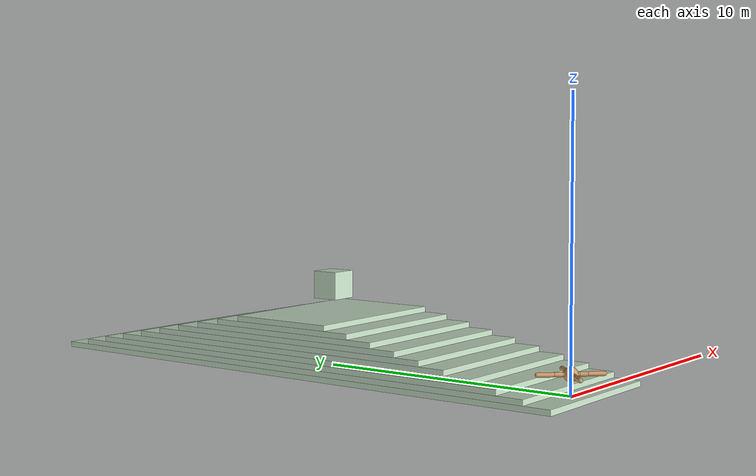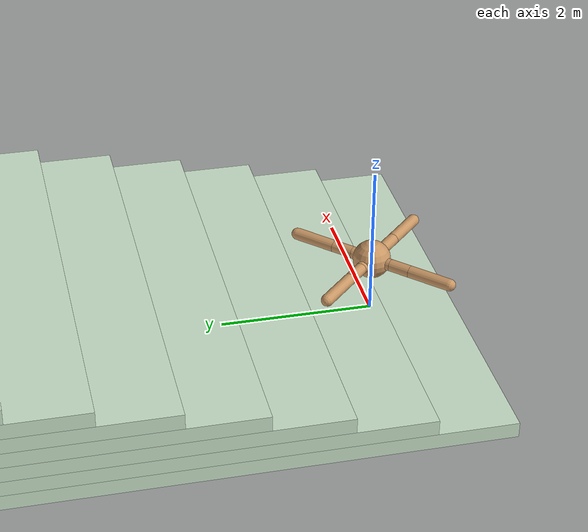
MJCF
<!-- NOT USING CURRENTLY -->

<mujoco model="ant stair scene">

  <include file="ant_stairs.xml"/>

  <statistic center="0 0 0.1" extent="0.8"/>

  <visual>
    <headlight diffuse="0.6 0.6 0.6" ambient="0.3 0.3 0.3" specular="0 0 0"/>
    <rgba haze="0.15 0.25 0.35 1"/>
  </visual>

  <asset>
    <texture type="skybox" builtin="gradient" rgb1="0.3 0.5 0.7" rgb2="0 0 0" width="512" height="3072"/>
    <texture type="2d" name="groundplane" builtin="checker" mark="edge" rgb1="0.2 0.3 0.4" rgb2="0.1 0.2 0.3"
      markrgb="0.8 0.8 0.8" width="300" height="300"/>

    <material name="groundplane" texture="groundplane" texuniform="true" texrepeat="5 5" reflectance="0.2"/>
    <material name="stair" texture="groundplane" texuniform="true" texrepeat="5 5" reflectance="0.2"/>

  </asset>

  <worldbody>
    <light pos="0 0 1.5" dir="0 0 -1" directional="true"/>

        <!-- Define the stairs -->
    <!-- Add more box geoms to create additional steps -->
  </worldbody>

</mujoco>

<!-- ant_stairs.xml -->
<mujoco model="ant">
  <compiler angle="degree" coordinate="local" inertiafromgeom="true"/>
  <option integrator="RK4" timestep="0.01"/>
  <custom>
    <numeric data="0.0 0.0 0.55 1.0 0.0 0.0 0.0 0.0 1.0 0.0 -1.0 0.0 -1.0 0.0 1.0" name="init_qpos"/>
  </custom>
  <default>
    <joint armature="1" damping="1" limited="true"/>
    <geom conaffinity="0" condim="3" density="5.0" friction="1 0.5 0.5" margin="0.01" rgba="0.8 0.6 0.4 1"/>
  </default>
  <asset>
    <texture builtin="gradient" height="100" rgb1="1 1 1" rgb2="0 0 0" type="skybox" width="100"/>
    <texture builtin="flat" height="1278" mark="cross" markrgb="1 1 1" name="texgeom" random="0.01" rgb1="0.8 0.6 0.4" rgb2="0.8 0.6 0.4" type="cube" width="127"/>
    <texture builtin="checker" height="100" name="texplane" rgb1="0 0 0" rgb2="0.8 0.8 0.8" type="2d" width="100"/>
    <material name="MatPlane" reflectance="0.5" shininess="1" specular="1" texrepeat="60 60" texture="texplane"/>
    <material name="geom" texture="texgeom" texuniform="true"/>
    <material name="Stairs" texture="texgeom" texuniform="true" texrepeat="5 5" reflectance="0.2" />

  </asset>
  <worldbody>
    <light cutoff="100" diffuse="1 1 1" dir="-0 0 -1.3" directional="true" exponent="1" pos="0 0 1.3" specular=".1 .1 .1"/>

    <!-- doing this do that the robot falls through if it gets away from the stairs -->

    <!-- setting up stairs -->
    <body name="stairset" pos="0 10 0">
      <geom conaffinity="1" condim="3" material="Stairs" name="stair0" pos="0 0 0.1" rgba="0.8 0.9 0.8 1" size="3 11 0.1" type="box"/>
      <geom conaffinity="1" condim="3" material="Stairs" name="stair1" pos="0 0 0.3" rgba="0.8 0.9 0.8 1" size="3 10 0.1" type="box"/>
      <geom conaffinity="1" condim="3" material="Stairs" name="stair2" pos="0 0 0.5" rgba="0.8 0.9 0.8 1" size="3 9 0.1" type="box"/>
      <geom conaffinity="1" condim="3" material="Stairs" name="stair3" pos="0 0 0.7" rgba="0.8 0.9 0.8 1" size="3 8 0.1" type="box"/>
      <geom conaffinity="1" condim="3" material="Stairs" name="stair4" pos="0 0 0.9" rgba="0.8 0.9 0.8 1" size="3 7 0.1" type="box"/>
      <geom conaffinity="1" condim="3" material="Stairs" name="stair5" pos="0 0 1.1" rgba="0.8 0.9 0.8 1" size="3 6 0.1" type="box"/>
      <geom conaffinity="1" condim="3" material="Stairs" name="stair6" pos="0 0 1.3" rgba="0.8 0.9 0.8 1" size="3 5 0.1" type="box"/>
      <geom conaffinity="1" condim="3" material="Stairs" name="stair7" pos="0 0 1.5" rgba="0.8 0.9 0.8 1" size="3 4 0.1" type="box"/>
      <geom conaffinity="1" condim="3" material="Stairs" name="stair8" pos="0 0 1.7" rgba="0.8 0.9 0.8 1" size="3 3 0.1" type="box"/>
      <geom conaffinity="1" condim="3" material="Stairs" name="stair9" pos="0 0 1.9" rgba="0.8 0.9 0.8 1" size="3 2 0.1" type="box"/>
    </body>

    <body name="target" pos="0 10 3">
      <geom conaffinity="1" condim="3" material="Stairs" name="test" pos="0 0 0" rgba="0.8 0.9 0.8 1" size="0.5 0.5 0.5" type="box"/>
    </body>

    <body name="torso" pos="0 0 0.75">
      <camera name="track" mode="trackcom" pos="0 -3 0.3" xyaxes="1 0 0 0 0 1"/>
      <geom name="torso_geom" pos="0 0 0" size="0.25" type="sphere"/>
      <joint armature="0" damping="0" limited="false" margin="0.01" name="root" pos="0 0 0" type="free"/>
      <body name="front_left_leg" pos="0 0 0">
        <geom fromto="0.0 0.0 0.0 0.2 0.2 0.0" name="aux_1_geom" size="0.08" type="capsule"/>
        <body name="aux_1" pos="0.2 0.2 0">
          <joint axis="0 0 1" name="hip_1" pos="0.0 0.0 0.0" range="-30 30" type="hinge"/>
          <geom fromto="0.0 0.0 0.0 0.2 0.2 0.0" name="left_leg_geom" size="0.08" type="capsule"/>
          <body pos="0.2 0.2 0">
            <joint axis="-1 1 0" name="ankle_1" pos="0.0 0.0 0.0" range="30 70" type="hinge"/>
            <geom fromto="0.0 0.0 0.0 0.4 0.4 0.0" name="left_ankle_geom" size="0.08" type="capsule"/>
          </body>
        </body>
      </body>
      <body name="front_right_leg" pos="0 0 0">
        <geom fromto="0.0 0.0 0.0 -0.2 0.2 0.0" name="aux_2_geom" size="0.08" type="capsule"/>
        <body name="aux_2" pos="-0.2 0.2 0">
          <joint axis="0 0 1" name="hip_2" pos="0.0 0.0 0.0" range="-30 30" type="hinge"/>
          <geom fromto="0.0 0.0 0.0 -0.2 0.2 0.0" name="right_leg_geom" size="0.08" type="capsule"/>
          <body pos="-0.2 0.2 0">
            <joint axis="1 1 0" name="ankle_2" pos="0.0 0.0 0.0" range="-70 -30" type="hinge"/>
            <geom fromto="0.0 0.0 0.0 -0.4 0.4 0.0" name="right_ankle_geom" size="0.08" type="capsule"/>
          </body>
        </body>
      </body>
      <body name="back_leg" pos="0 0 0">
        <geom fromto="0.0 0.0 0.0 -0.2 -0.2 0.0" name="aux_3_geom" size="0.08" type="capsule"/>
        <body name="aux_3" pos="-0.2 -0.2 0">
          <joint axis="0 0 1" name="hip_3" pos="0.0 0.0 0.0" range="-30 30" type="hinge"/>
          <geom fromto="0.0 0.0 0.0 -0.2 -0.2 0.0" name="back_leg_geom" size="0.08" type="capsule"/>
          <body pos="-0.2 -0.2 0">
            <joint axis="-1 1 0" name="ankle_3" pos="0.0 0.0 0.0" range="-70 -30" type="hinge"/>
            <geom fromto="0.0 0.0 0.0 -0.4 -0.4 0.0" name="third_ankle_geom" size="0.08" type="capsule"/>
          </body>
        </body>
      </body>
      <body name="right_back_leg" pos="0 0 0">
        <geom fromto="0.0 0.0 0.0 0.2 -0.2 0.0" name="aux_4_geom" size="0.08" type="capsule"/>
        <body name="aux_4" pos="0.2 -0.2 0">
          <joint axis="0 0 1" name="hip_4" pos="0.0 0.0 0.0" range="-30 30" type="hinge"/>
          <geom fromto="0.0 0.0 0.0 0.2 -0.2 0.0" name="rightback_leg_geom" size="0.08" type="capsule"/>
          <body pos="0.2 -0.2 0">
            <joint axis="1 1 0" name="ankle_4" pos="0.0 0.0 0.0" range="30 70" type="hinge"/>
            <geom fromto="0.0 0.0 0.0 0.4 -0.4 0.0" name="fourth_ankle_geom" size="0.08" type="capsule"/>
          </body>
        </body>
      </body>
    </body>
  </worldbody>
  <actuator>
    <motor ctrllimited="true" ctrlrange="-1.0 1.0" joint="hip_4" gear="150"/>
    <motor ctrllimited="true" ctrlrange="-1.0 1.0" joint="ankle_4" gear="150"/>
    <motor ctrllimited="true" ctrlrange="-1.0 1.0" joint="hip_1" gear="150"/>
    <motor ctrllimited="true" ctrlrange="-1.0 1.0" joint="ankle_1" gear="150"/>
    <motor ctrllimited="true" ctrlrange="-1.0 1.0" joint="hip_2" gear="150"/>
    <motor ctrllimited="true" ctrlrange="-1.0 1.0" joint="ankle_2" gear="150"/>
    <motor ctrllimited="true" ctrlrange="-1.0 1.0" joint="hip_3" gear="150"/>
    <motor ctrllimited="true" ctrlrange="-1.0 1.0" joint="ankle_3" gear="150"/>
  </actuator>
</mujoco>
